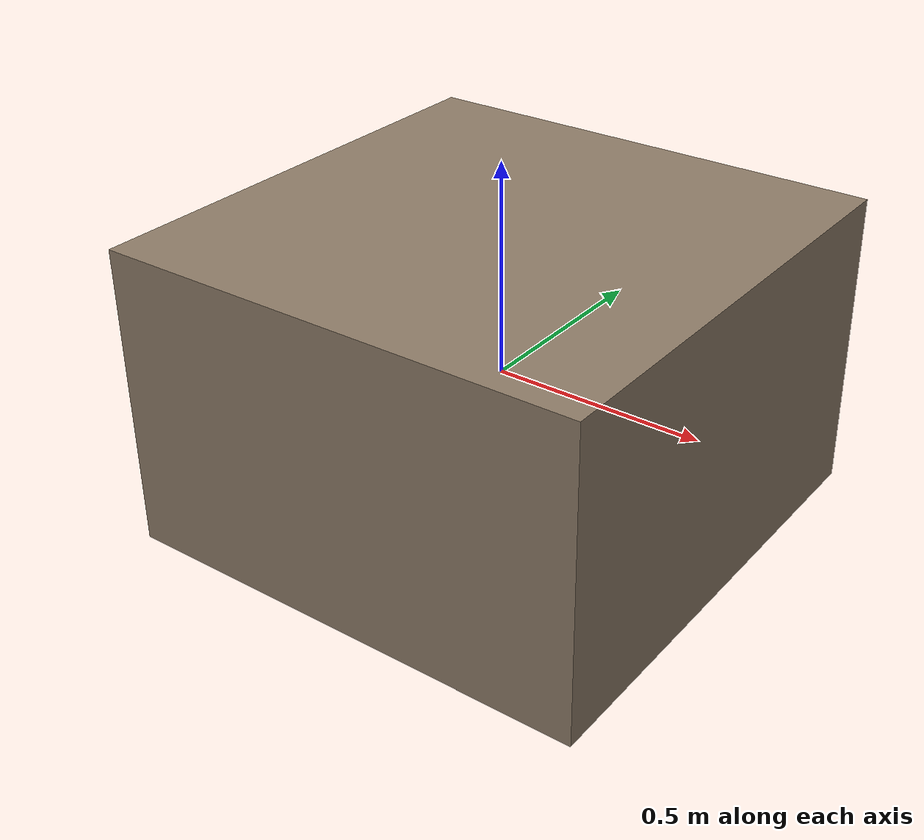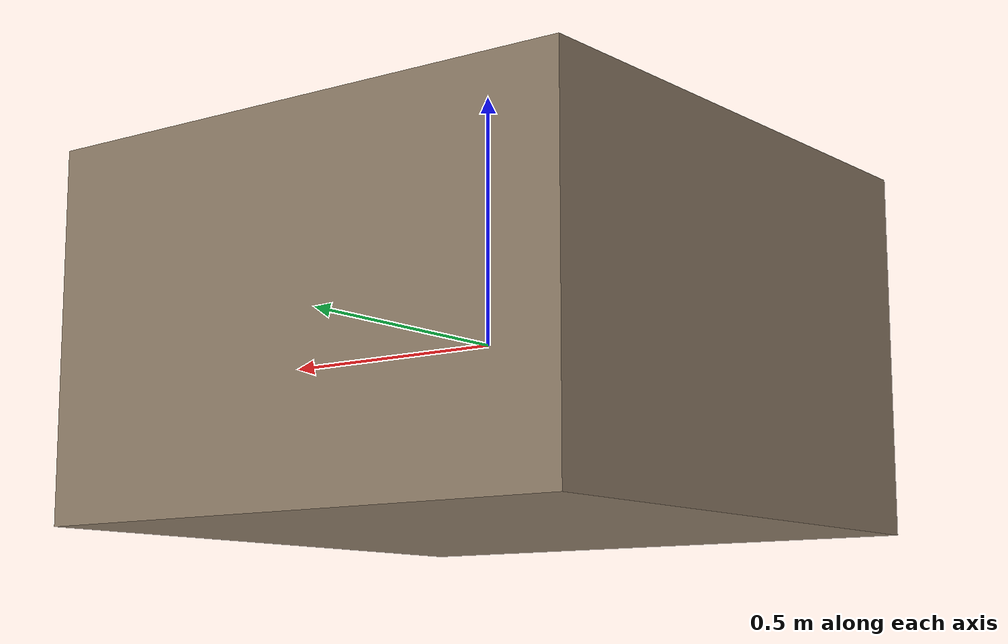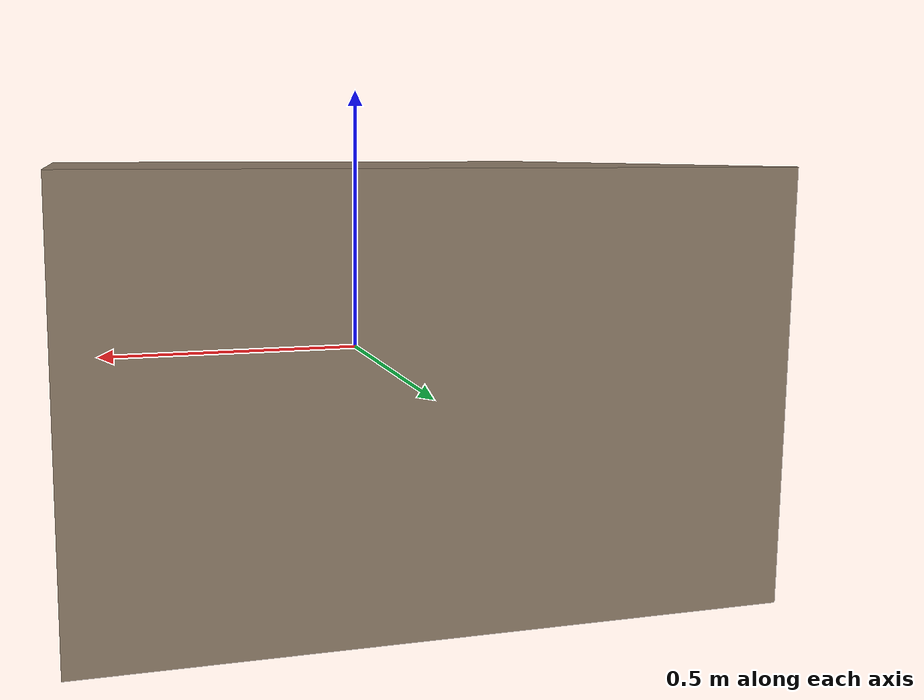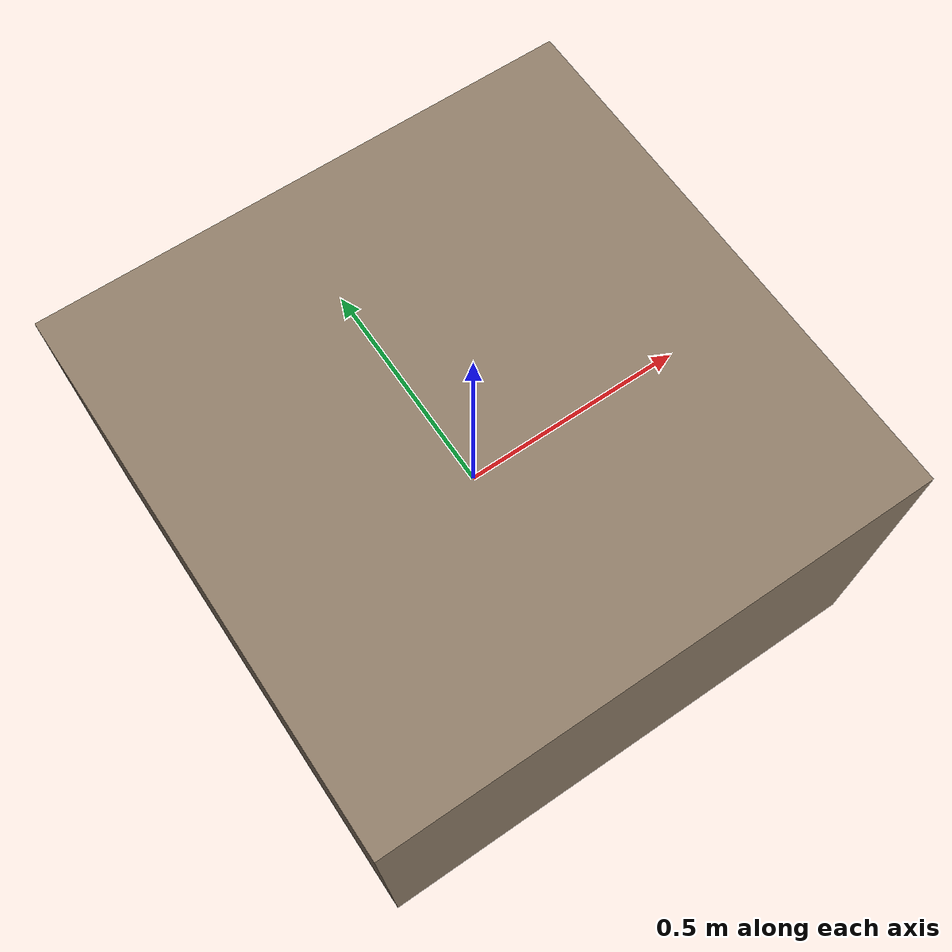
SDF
<?xml version="1.0"?>
<sdf version="1.6">
  <model name="office_cafe_table">
    <static>true</static>
    <link name="link">
      <collision name="col">
        <geometry>
          <box>
            <size>1.15 1.15 0.72</size>
          </box>
        </geometry>
      </collision>
      <visual name="vis">
        <geometry>
          <box>
            <size>1.15 1.15 0.72</size>
          </box>
        </geometry>
        <material>
          <ambient>0.55 0.48 0.4 1</ambient>
          <diffuse>0.55 0.48 0.4 1</diffuse>
        </material>
      </visual>
    </link>
  </model>
</sdf>
